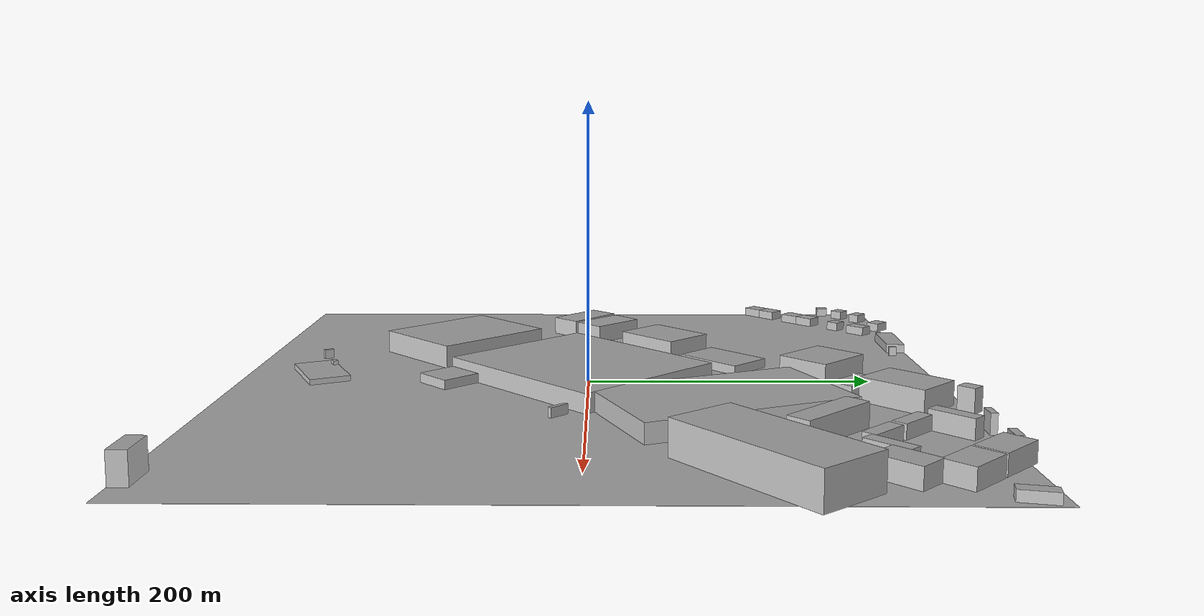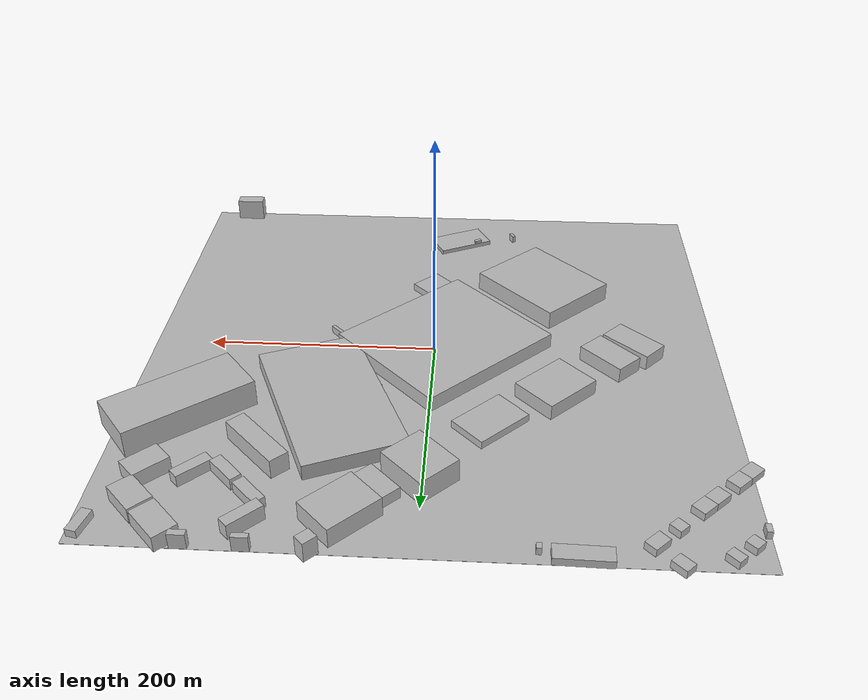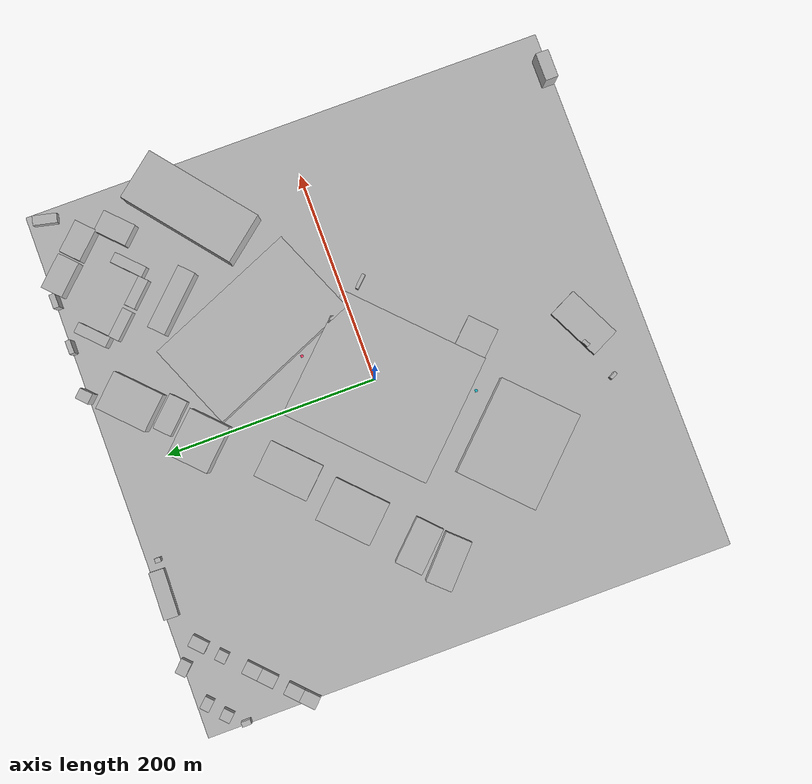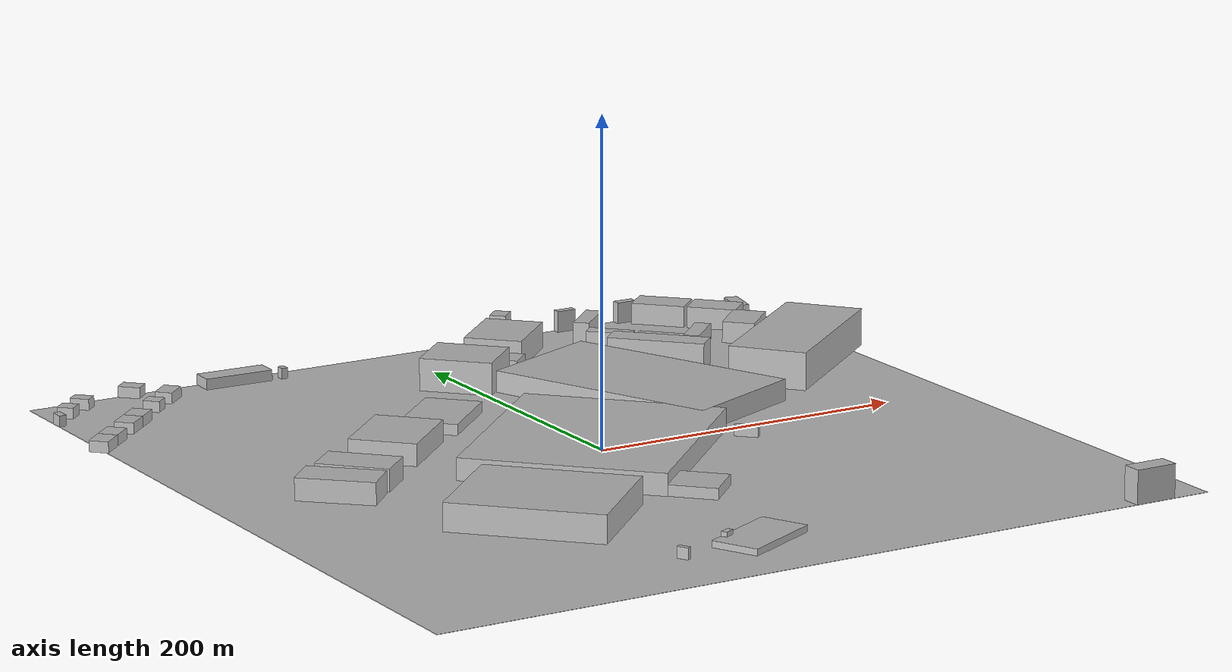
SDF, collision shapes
<?xml version="1.0"?>
<sdf version="1.9">
  <model name="kumpula_campus">
    <static>true</static>
    <link name="ground">
      <collision name="ground-collision">
        <geometry>
          <box>
            <size>500 500 0.2</size>
          </box>
        </geometry>
        <pose>0 0 -0.1 0 0 0</pose>
      </collision>
      <visual name="orthophoto-ground">
        <geometry>
          <mesh>
            <uri>meshes/kumpula-ground.obj</uri>
          </mesh>
        </geometry>
        <material>
          <pbr>
            <metal>
              <albedo_map>materials/textures/kumpula-orthophoto.jpg</albedo_map>
              <roughness>1.0</roughness>
            </metal>
          </pbr>
        </material>
      </visual>
    </link>
    <link name="building-visuals">
      <visual name="registered-buildings">
        <geometry>
          <mesh>
            <uri>meshes/kumpula-buildings.obj</uri>
          </mesh>
        </geometry>
      </visual>
    </link>
    <link name="building-collision-000">
      <collision name="Rakennukset_alue_rekisteritiedot-28059-0-collision">
        <pose>-85.3472 238.4072 3.4000 0 0 -1.59604289</pose>
        <geometry>
          <box>
            <size>5.4435 4.1712 6.8000</size>
          </box>
        </geometry>
      </collision>
    </link>
    <link name="building-collision-001">
      <collision name="Rakennukset_alue_rekisteritiedot-29466-0-collision">
        <pose>-34.7886 -190.7966 3.4000 0 0 0.45817560</pose>
        <geometry>
          <box>
            <size>6.5821 3.7790 6.8000</size>
          </box>
        </geometry>
      </collision>
    </link>
    <link name="building-collision-002">
      <collision name="Rakennukset_alue_rekisteritiedot-33188-0-collision">
        <pose>-98.3652 -100.2685 8.5000 0 0 -0.80073989</pose>
        <geometry>
          <box>
            <size>93.7887 77.5894 17.0000</size>
          </box>
        </geometry>
      </collision>
    </link>
    <link name="building-collision-003">
      <collision name="Rakennukset_alue_rekisteritiedot-33270-0-collision">
        <pose>80.3346 88.4520 6.8000 0 0 1.97312029</pose>
        <geometry>
          <box>
            <size>152.6402 86.9053 13.6000</size>
          </box>
        </geometry>
      </collision>
    </link>
    <link name="building-collision-004">
      <collision name="Rakennukset_alue_rekisteritiedot-33857-0-collision">
        <pose>-50.5151 101.2985 3.4000 0 0 0.76935822</pose>
        <geometry>
          <box>
            <size>52.5781 35.3534 6.8000</size>
          </box>
        </geometry>
      </collision>
    </link>
    <link name="building-collision-005">
      <collision name="Rakennukset_alue_rekisteritiedot-33940-0-collision">
        <pose>-104.2268 59.3582 6.8000 0 0 0.77005671</pose>
        <geometry>
          <box>
            <size>53.4845 41.7347 13.6000</size>
          </box>
        </geometry>
      </collision>
    </link>
    <link name="building-collision-006">
      <collision name="Rakennukset_alue_rekisteritiedot-34277-0-collision">
        <pose>213.4080 -243.9551 10.2000 0 0 3.14159265</pose>
        <geometry>
          <box>
            <size>26.3651 12.0897 20.4000</size>
          </box>
        </geometry>
      </collision>
    </link>
    <link name="building-collision-007">
      <collision name="Rakennukset_alue_rekisteritiedot-35321-0-collision">
        <pose>129.4699 147.2622 8.5000 0 0 2.34084690</pose>
        <geometry>
          <box>
            <size>61.9001 16.9702 17.0000</size>
          </box>
        </geometry>
      </collision>
    </link>
    <link name="building-collision-008">
      <collision name="Rakennukset_alue_rekisteritiedot-35635-0-collision">
        <pose>56.4040 212.8143 8.5000 0 0 -2.37157545</pose>
        <geometry>
          <box>
            <size>49.0186 36.8703 17.0000</size>
          </box>
        </geometry>
      </collision>
    </link>
    <link name="building-collision-009">
      <collision name="Rakennukset_alue_rekisteritiedot-36104-0-collision">
        <pose>1.9998 166.1791 10.2000 0 0 -0.79924749</pose>
        <geometry>
          <box>
            <size>45.6114 39.0870 20.4000</size>
          </box>
        </geometry>
      </collision>
    </link>
    <link name="building-collision-010">
      <collision name="Rakennukset_alue_rekisteritiedot-36723-0-collision">
        <pose>-153.2714 13.9420 6.8000 0 0 2.34083658</pose>
        <geometry>
          <box>
            <size>44.8146 26.2495 13.6000</size>
          </box>
        </geometry>
      </collision>
    </link>
    <link name="building-collision-011">
      <collision name="Rakennukset_alue_rekisteritiedot-36723-1-collision">
        <pose>-175.4591 -5.7897 6.8000 0 0 -0.75003956</pose>
        <geometry>
          <box>
            <size>47.5133 24.8430 13.6000</size>
          </box>
        </geometry>
      </collision>
    </link>
    <link name="building-collision-012">
      <collision name="Rakennukset_alue_rekisteritiedot-38289-0-collision">
        <pose>33.1128 183.9222 5.1000 0 0 -0.80075770</pose>
        <geometry>
          <box>
            <size>34.4005 17.8000 10.2000</size>
          </box>
        </geometry>
      </collision>
    </link>
    <link name="building-collision-013">
      <collision name="Rakennukset_alue_rekisteritiedot-39082-0-collision">
        <pose>74.9220 249.3343 8.5000 0 0 0.76837939</pose>
        <geometry>
          <box>
            <size>12.4726 10.2035 17.0000</size>
          </box>
        </geometry>
      </collision>
    </link>
    <link name="building-collision-014">
      <collision name="Rakennukset_alue_rekisteritiedot-39832-1-collision">
        <pose>-182.9387 248.6706 3.4000 0 0 -0.79419173</pose>
        <geometry>
          <box>
            <size>13.8379 10.2897 6.8000</size>
          </box>
        </geometry>
      </collision>
    </link>
    <link name="building-collision-015">
      <collision name="Rakennukset_alue_rekisteritiedot-42870-0-collision">
        <pose>210.1619 209.4061 6.8000 0 0 2.34088562</pose>
        <geometry>
          <box>
            <size>31.7009 20.8447 13.6000</size>
          </box>
        </geometry>
      </collision>
    </link>
    <link name="building-collision-016">
      <collision name="Rakennukset_alue_rekisteritiedot-42937-1-collision">
        <pose>165.5667 247.3010 6.8000 0 0 0.00000000</pose>
        <geometry>
          <box>
            <size>13.1168 5.3979 13.6000</size>
          </box>
        </geometry>
      </collision>
    </link>
    <link name="building-collision-017">
      <collision name="Rakennukset_alue_rekisteritiedot-43058-0-collision">
        <pose>209.5886 174.2189 6.8000 0 0 0.77164948</pose>
        <geometry>
          <box>
            <size>31.7315 20.8729 13.6000</size>
          </box>
        </geometry>
      </collision>
    </link>
    <link name="building-collision-018">
      <collision name="Rakennukset_alue_rekisteritiedot-43110-0-collision">
        <pose>185.7369 234.5672 6.8000 0 0 2.33841689</pose>
        <geometry>
          <box>
            <size>34.4366 20.7997 13.6000</size>
          </box>
        </geometry>
      </collision>
    </link>
    <link name="building-collision-019">
      <collision name="Rakennukset_alue_rekisteritiedot-45341-0-collision">
        <pose>124.8316 225.1153 6.8000 0 0 -2.37155614</pose>
        <geometry>
          <box>
            <size>31.7085 10.1726 13.6000</size>
          </box>
        </geometry>
      </collision>
    </link>
    <link name="building-collision-020">
      <collision name="Rakennukset_alue_rekisteritiedot-45669-0-collision">
        <pose>121.2849 247.6629 6.8000 0 0 0.00000000</pose>
        <geometry>
          <box>
            <size>12.6777 4.6741 13.6000</size>
          </box>
        </geometry>
      </collision>
    </link>
    <link name="building-collision-021">
      <collision name="Rakennukset_alue_rekisteritiedot-45774-0-collision">
        <pose>125.6243 198.6777 5.1000 0 0 -0.79974040</pose>
        <geometry>
          <box>
            <size>28.9896 10.1426 10.2000</size>
          </box>
        </geometry>
      </collision>
    </link>
    <link name="building-collision-022">
      <collision name="Rakennukset_alue_rekisteritiedot-45881-0-collision">
        <pose>174.4076 173.9894 5.1000 0 0 0.77004399</pose>
        <geometry>
          <box>
            <size>31.7017 10.1138 10.2000</size>
          </box>
        </geometry>
      </collision>
    </link>
    <link name="building-collision-023">
      <collision name="Rakennukset_alue_rekisteritiedot-45907-0-collision">
        <pose>147.9707 175.6502 5.1000 0 0 -0.80099113</pose>
        <geometry>
          <box>
            <size>28.9474 10.1430 10.2000</size>
          </box>
        </geometry>
      </collision>
    </link>
    <link name="building-collision-024">
      <collision name="Rakennukset_alue_rekisteritiedot-48969-0-collision">
        <pose>-247.8749 152.3084 3.4000 0 0 -2.37155648</pose>
        <geometry>
          <box>
            <size>15.7461 12.1286 6.8000</size>
          </box>
        </geometry>
      </collision>
    </link>
    <link name="building-collision-025">
      <collision name="Rakennukset_alue_rekisteritiedot-49032-0-collision">
        <pose>-217.5052 181.3024 3.4000 0 0 -2.38144067</pose>
        <geometry>
          <box>
            <size>15.8907 12.1089 6.8000</size>
          </box>
        </geometry>
      </collision>
    </link>
    <link name="building-collision-026">
      <collision name="Rakennukset_alue_rekisteritiedot-49129-0-collision">
        <pose>240.9346 232.4546 3.4000 0 0 -1.79204746</pose>
        <geometry>
          <box>
            <size>22.5747 9.0218 6.8000</size>
          </box>
        </geometry>
      </collision>
    </link>
    <link name="building-collision-027">
      <collision name="Rakennukset_alue_rekisteritiedot-50176-0-collision">
        <pose>-236.6472 163.1058 3.4000 0 0 0.76160615</pose>
        <geometry>
          <box>
            <size>15.5106 12.1280 6.8000</size>
          </box>
        </geometry>
      </collision>
    </link>
    <link name="building-collision-028">
      <collision name="Rakennukset_alue_rekisteritiedot-50834-0-collision">
        <pose>-206.2861 192.0303 3.4000 0 0 -2.37561446</pose>
        <geometry>
          <box>
            <size>15.3263 12.1094 6.8000</size>
          </box>
        </geometry>
      </collision>
    </link>
    <link name="building-collision-029">
      <collision name="Rakennukset_alue_rekisteritiedot-51413-0-collision">
        <pose>-168.0091 229.1784 3.4000 0 0 0.76011758</pose>
        <geometry>
          <box>
            <size>16.1479 10.9214 6.8000</size>
          </box>
        </geometry>
      </collision>
    </link>
    <link name="building-collision-030">
      <collision name="Rakennukset_alue_rekisteritiedot-61548-0-collision">
        <pose>-220.2472 239.5705 3.4000 0 0 2.33019233</pose>
        <geometry>
          <box>
            <size>11.8281 8.8614 6.8000</size>
          </box>
        </geometry>
      </collision>
    </link>
    <link name="building-collision-031">
      <collision name="Rakennukset_alue_rekisteritiedot-61860-0-collision">
        <pose>-185.2869 213.1469 3.4000 0 0 -0.80745197</pose>
        <geometry>
          <box>
            <size>10.3821 10.0113 6.8000</size>
          </box>
        </geometry>
      </collision>
    </link>
    <link name="building-collision-032">
      <collision name="Rakennukset_alue_rekisteritiedot-68417-0-collision">
        <pose>-247.7157 212.3480 3.4000 0 0 1.57079633</pose>
        <geometry>
          <box>
            <size>8.6997 4.5686 6.8000</size>
          </box>
        </geometry>
      </collision>
    </link>
    <link name="building-collision-033">
      <collision name="Rakennukset_alue_rekisteritiedot-68454-0-collision">
        <pose>-235.6941 226.4219 3.4000 0 0 0.77140742</pose>
        <geometry>
          <box>
            <size>10.2083 10.0911 6.8000</size>
          </box>
        </geometry>
      </collision>
    </link>
    <link name="building-collision-034">
      <collision name="Rakennukset_alue_rekisteritiedot-72987-0-collision">
        <pose>202.2595 103.0223 11.9000 0 0 0.67928222</pose>
        <geometry>
          <box>
            <size>114.2575 49.3955 23.8000</size>
          </box>
        </geometry>
      </collision>
    </link>
    <link name="building-collision-035">
      <collision name="Rakennukset_alue_rekisteritiedot-74578-0-collision">
        <pose>-16.8861 -196.0634 2.0000 0 0 -2.68497959</pose>
        <geometry>
          <box>
            <size>53.5710 29.2961 4.0000</size>
          </box>
        </geometry>
      </collision>
    </link>
    <link name="building-collision-036">
      <collision name="Rakennukset_alue_rekisteritiedot-77061-0-collision">
        <pose>-115.7564 243.5075 3.4000 0 0 3.11633951</pose>
        <geometry>
          <box>
            <size>44.1643 14.1047 6.8000</size>
          </box>
        </geometry>
      </collision>
    </link>
    <link name="building-collision-037">
      <collision name="Rakennukset_alue_rekisteritiedot-7772-0-collision">
        <pose>-70.9472 -203.7905 3.4000 0 0 2.07560833</pose>
        <geometry>
          <box>
            <size>7.0304 3.0311 6.8000</size>
          </box>
        </geometry>
      </collision>
    </link>
    <link name="building-collision-038">
      <collision name="Rakennukset_alue_rekisteritiedot-78521-0-collision">
        <pose>-8.9491 -5.5666 6.8000 0 0 -2.37152439</pose>
        <geometry>
          <box>
            <size>142.4975 124.1639 13.6000</size>
          </box>
        </geometry>
      </collision>
    </link>
    <link name="building-collision-039">
      <collision name="Rakennukset_alue_rekisteritiedot-79951-0-collision">
        <pose>1.8065 -96.9723 3.4000 0 0 2.33983412</pose>
        <geometry>
          <box>
            <size>36.7617 29.6214 6.8000</size>
          </box>
        </geometry>
      </collision>
    </link>
    <link name="building-collision-040">
      <collision name="Rakennukset_alue_rekisteritiedot-79952-0-collision">
        <pose>-29.0352 -82.1082 3.4000 0 0 -0.79571007</pose>
        <geometry>
          <box>
            <size>11.4670 6.0385 6.8000</size>
          </box>
        </geometry>
      </collision>
    </link>
    <link name="building-collision-041">
      <collision name="Rakennukset_alue_rekisteritiedot-8038-0-collision">
        <pose>88.4555 -18.0982 3.4000 0 0 -0.80071717</pose>
        <geometry>
          <box>
            <size>14.6501 3.1000 6.8000</size>
          </box>
        </geometry>
      </collision>
    </link>
    <link name="office-drone-launch-pad">
      <collision name="office-drone-launch-pad-collision">
        <pose>-41 -83 0.04 0 0 0</pose>
        <geometry>
          <box>
            <size>2.4 2.4 0.08</size>
          </box>
        </geometry>
      </collision>
      <visual name="office-drone-launch-pad-visual">
        <pose>-41 -83 0.04 0 0 0</pose>
        <geometry>
          <box>
            <size>2.4 2.4 0.08</size>
          </box>
        </geometry>
        <material>
          <ambient>0.10 0.72 0.78 1</ambient>
          <diffuse>0.10 0.72 0.78 1</diffuse>
        </material>
      </visual>
    </link>
    <link name="takeout-pickup-pad">
      <collision name="takeout-pickup-pad-collision">
        <pose>43 55 0.04 0 0 0</pose>
        <geometry>
          <box>
            <size>2.4 2.4 0.08</size>
          </box>
        </geometry>
      </collision>
      <visual name="takeout-pickup-pad-visual">
        <pose>43 55 0.04 0 0 0</pose>
        <geometry>
          <box>
            <size>2.4 2.4 0.08</size>
          </box>
        </geometry>
        <material>
          <ambient>0.98 0.25 0.42 1</ambient>
          <diffuse>0.98 0.25 0.42 1</diffuse>
        </material>
      </visual>
    </link>
  </model>
</sdf>
